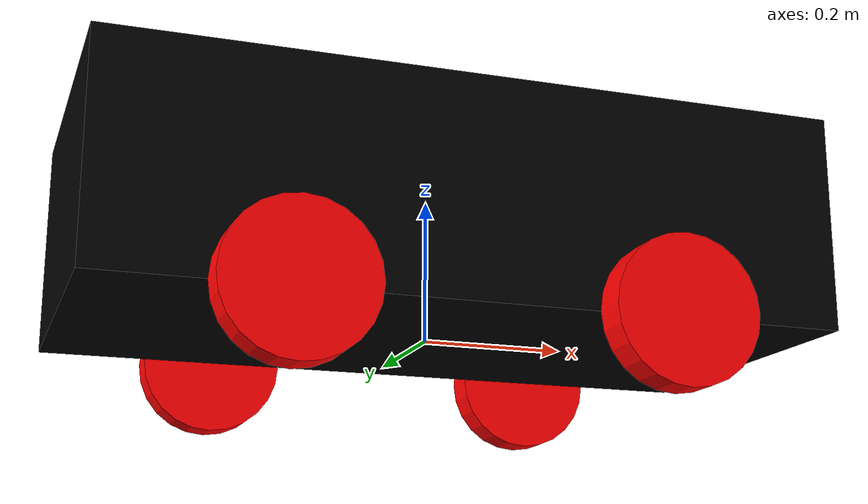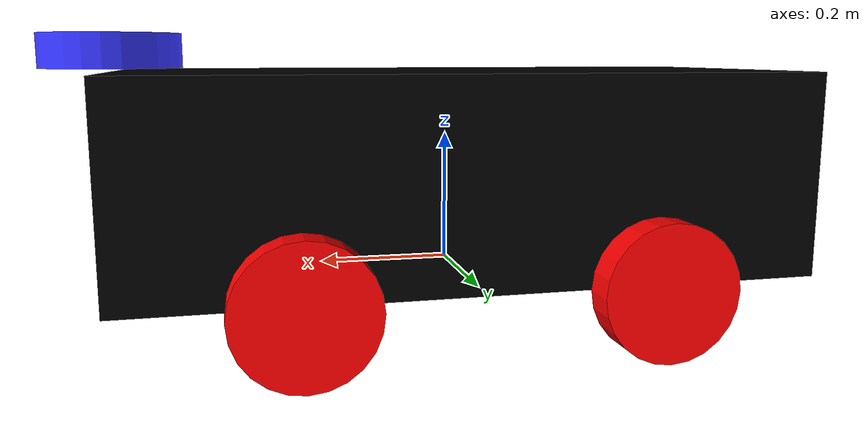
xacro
<?xml version="1.0"?>
<robot xmlns:xacro="http://www.ros.org/wiki/xacro"  name="robot">
    <!-- Robot description -->
    <xacro:include filename="robot_core.xacro"/>

    <xacro:include filename="gazebo_control.xacro"/>

    <xacro:include filename="lidar.xacro"/>

    <xacro:include filename="camera.xacro"/>

</robot>

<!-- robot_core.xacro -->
<robot xmlns:xacro="http://www.ros.org/wiki/xacro"  name="robot">

    <xacro:include filename="inertial_macros.xacro"/>

    <!-- define colors that i will use in all xacro files-->
    <material name="white">
        <color rgba="1 1 1 1" />
    </material>

    <material name="orange">
        <color rgba="1 0.3 0.1 1" />
    </material>

    <material name="blue">
        <color rgba="0.2 0.2 1 1"/>
    </material>

    <material name="black">
        <color rgba="0 0 0 1" />
    </material>

    <material name="red">
        <color rgba="1 0 0 1"/>
    </material>

    <!-- start to make links-->
    <!-- base_link-->
    <link name="base_link">

    </link>

    <!-- Base_Footprint link-->

    <joint name="base_footprint_joint" type="fixed">
        <parent link="base_link"/>
        <child link="base_footprint"/>
        <origin xyz="0 0 0" rpy="0 0 0"/>
    </joint>

    <link name="base_footprint">
    </link>

    <!-- chassis_link-->
    <!-- i need the chassis_joint on the back of robot-->
    <joint name="chassis_joint" type="fixed">
        <parent link="base_link"/>
        <child link="chassis_link"/>
        <origin xyz="-0.5 0 0"/>
    </joint>

    <link name="chassis_link">
        <visual>
            <!-- we need the origin of chassis at the back of robot so shift the visual of chassis by half in x and z-->
            <origin xyz="0.5 0 0.15"/>
            <geometry>
                <!-- diemensions of our robot x y z-->
                <box size="1 0.5 0.3"/>
            </geometry>
            <material name="black"/>
        </visual>
        <!-- collsion contain same parameters in visual but without material -->
        <collision>
            <!-- we need the origin of chassis at the back of robot so shift the visual of chassis by half in x and z-->
            <origin xyz="0.5 0 0.15"/>
            <geometry>
                <!-- diemensions of our robot x y z-->
                <box size="1 0.5 0.3"/>
            </geometry>
        </collision>
        <xacro:inertial_box mass="0.5" x="1" y="0.5" z="0.3">
            <!-- origin must be the same origin in the visual not in the joint -->
            <origin xyz="0.5 0 0.15" rpy="0 0 0"/>
        </xacro:inertial_box>
    </link>

    <!-- gazebo tag here to define colors of the material on gazebo and not appear all
         material as a white color -->
    <gazebo reference="chassis_link">
        <material>Gazebo/Black</material>
    </gazebo>

    <!-- Wheels -->

    <!-- so when adjust to our robot i need to know
    -    centre of rotation to adjust the structure to it
    -    position of our wheels from base_link-->
    <!-- Left rear wheel link -->
    <joint name="left_rear_wheel_joint" type="continuous">
        <parent link="base_link"/>
        <child link="left_rear_wheel_link"/>
        <!-- we need z point to out of the robot so rotate in x -pi/2-->
        <origin xyz="-0.25 0.275 0" rpy="-${pi/2} 0 0"/>
        <!-- we need to specify axis of rotation, we want that to be positive around z-axis
             so anti-clockwise around z-->
        <axis xyz="0 0 1"/>
    </joint>

    <link name="left_rear_wheel_link">
        <visual>
            <geometry>
                <cylinder radius="0.1" length="0.05"/>
            </geometry>
            <material name="red"/>
        </visual>
        <collision>
            <geometry>
                <cylinder radius="0.1" length="0.05"/>
            </geometry>
        </collision>
        <xacro:inertial_cylinder mass="0.1" length="0.05" radius="0.1">
            <!-- if there no origin in the visual put it all zeros-->
            <origin xyz="0 0 0" rpy="0 0 0"/>
        </xacro:inertial_cylinder>
    </link>

    <!-- gazebo tag here to define colors of the material on gazebo and not appear all
     material as a white color -->
     <gazebo reference="left_rear_wheel_link">
        <material>Gazebo/Red</material>
    </gazebo>

    <!-- Left front wheel link -->
    <joint name="left_front_wheel_joint" type="continuous">
        <parent link="base_link"/>
        <child link="left_front_wheel_link"/>
        <!-- we need z point to out of the robot so rotate in x -pi/2-->
        <origin xyz="0.25 0.275 0" rpy="-${pi/2} 0 0"/>
        <!-- we need to specify axis of rotation, we want that to be positive around z-axis
             so anti-clockwise around z-->
        <axis xyz="0 0 1"/>
    </joint>

    <link name="left_front_wheel_link">
        <visual>
            <geometry>
                <cylinder radius="0.1" length="0.05"/>
            </geometry>
            <material name="red"/>
        </visual>
        <collision>
            <geometry>
                <cylinder radius="0.1" length="0.05"/>
            </geometry>
        </collision>
        <xacro:inertial_cylinder mass="0.1" length="0.05" radius="0.1">
            <!-- if there no origin in the visual put it all zeros-->
            <origin xyz="0 0 0" rpy="0 0 0"/>
        </xacro:inertial_cylinder>
    </link>

    <!-- gazebo tag here to define colors of the material on gazebo and not appear all
     material as a white color -->
     <gazebo reference="left_front_wheel_link">
        <material>Gazebo/Red</material>
    </gazebo>

    <!-- Right rear wheel link -->
    <joint name="right_rear_wheel_joint" type="continuous">
        <parent link="base_link"/>
        <child link="right_rear_wheel_link"/>
        <!-- we need z point to out of the robot so rotate in x pi/2-->
        <origin xyz="-0.25 -0.275 0" rpy="${pi/2} 0 0"/>
        <!-- we need to specify axis of rotation, we want that to be positive around z-axis
             so clockwise around z-->
        <axis xyz="0 0 -1"/>
    </joint>

    <link name="right_rear_wheel_link">
        <visual>
            <geometry>
                <cylinder radius="0.1" length="0.05"/>
            </geometry>
            <material name="red"/>
        </visual>
        <collision>
            <geometry>
                <cylinder radius="0.1" length="0.05"/>
            </geometry>
        </collision>
        <xacro:inertial_cylinder mass="0.1" length="0.05" radius="0.1">
            <!-- if there no origin in the visual put it all zeros-->
            <origin xyz="0 0 0" rpy="0 0 0"/>
        </xacro:inertial_cylinder>
    </link>

    <!-- gazebo tag here to define colors of the material on gazebo and not appear all
     material as a white color -->
     <gazebo reference="right_rear_wheel_link">
        <material>Gazebo/Red</material>
    </gazebo>

    <!-- Right front wheel link -->
    <joint name="right_front_wheel_joint" type="continuous">
        <parent link="base_link"/>
        <child link="right_front_wheel_link"/>
        <!-- we need z point to out of the robot so rotate in x pi/2-->
        <origin xyz="0.25 -0.275 0" rpy="${pi/2} 0 0"/>
        <!-- we need to specify axis of rotation, we want that to be positive around z-axis
             so clockwise around z-->
        <axis xyz="0 0 -1"/>
    </joint>

    <link name="right_front_wheel_link">
        <visual>
            <geometry>
                <cylinder radius="0.1" length="0.05"/>
            </geometry>
            <material name="red"/>
        </visual>
        <collision>
            <geometry>
                <cylinder radius="0.1" length="0.05"/>
            </geometry>
        </collision>
        <xacro:inertial_cylinder mass="0.1" length="0.05" radius="0.1">
            <!-- if there no origin in the visual put it all zeros-->
            <origin xyz="0 0 0" rpy="0 0 0"/>
        </xacro:inertial_cylinder>
    </link>

    <!-- gazebo tag here to define colors of the material on gazebo and not appear all
     material as a white color -->
     <gazebo reference="right_front_wheel_link">
        <material>Gazebo/Red</material>
    </gazebo>

</robot>

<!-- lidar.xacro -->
<robot xmlns:xacro="http://www.ros.org/wiki/xacro" >

    <joint name="laser_joint" type="fixed">
        <parent link="chassis_link"/>
        <child link="laser_frame"/>
        <origin xyz="1 0 0.33" rpy="0 0 0"/>
    </joint>

    <link name="laser_frame">
        <visual>
            <geometry>
                <cylinder radius="0.1" length="0.05"/>
            </geometry>
            <material name="blue"/>
        </visual>
        <collision>
            <geometry>
                <cylinder radius="0.1" length="0.05"/>
            </geometry>
        </collision>
        <xacro:inertial_cylinder mass="0.1" length="0.05" radius="0.1">
            <!-- if there no origin in the visual put it all zeros-->
            <origin xyz="0 0 0" rpy="0 0 0"/>
        </xacro:inertial_cylinder>
    </link>

    <gazebo reference="laser_frame">
        <material>Gazebo/Blue</material>
        <sensor name="laser" type="ray">
            <pose> 0 0 0 0 0 0 </pose>
            <visualize>true</visualize>
            <update_rate>10</update_rate>
            <ray>
                <scan>
                    <horizontal>
                        <samples>360</samples>
                        <resolution>1</resolution>
                        <min_angle>-3.14</min_angle>
                        <max_angle>3.14</max_angle>
                    </horizontal>
                </scan>
                <range>
                    <min>0.3</min>
                    <max>12</max>
                    <resolution>0.01</resolution>
                </range>
            </ray>
            <plugin name="laser_controller" filename="libgazebo_ros_ray_sensor.so">
                <ros>
                    <argument>~/out:=scan</argument>
                </ros>
                <output_type>sensor_msgs/LaserScan</output_type>
                <frame_name>laser_frame</frame_name>
            </plugin>
        </sensor>
    </gazebo>

</robot>

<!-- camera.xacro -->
<robot xmlns:xacro="http://www.ros.org/wiki/xacro" >

    <joint name="camera_joint" type="fixed">
        <parent link="chassis_link"/>
        <child link="camera_link"/>
        <origin xyz="1 0 0.17" rpy="0 0 0"/>
    </joint>

    <link name="camera_link">
        <visual>
            <geometry>
                <box size="0.010 0.03 0.03"/>
            </geometry>
            <material name="blue"/>
        </visual>
    </link>

    <!-- convert from ROS coordinate system to Standard coordinate system-->
    <joint name="camera_optica;_joint" type="fixed">
        <parent link="camera_link"/>
        <child link="camera_link_optical"/>
        <origin xyz="0 0 0" rpy="${-pi/2} 0 ${pi/2}"/>
    </joint>

    <link name="camera_link_optical"></link>

    <gazebo reference="camera_link">
        <material>Gazebo/Blue</material>
        <sensor name="camera" type="camera">
            <pose> 0 0 0 0 0 0 </pose>
            <visualize>true</visualize>
            <update_rate>10</update_rate>
            <camera>
                <horizontal_fov>1.089</horizontal_fov>
                <image>
                    <format>R8G8B8</format>
                    <width>640</width>
                    <height>480</height>
                </image>
                <clip>
                    <near>0.05</near>
                    <far>8.0</far>
                </clip>
            </camera>
            <plugin name="camera_controller" filename="libgazebo_ros_camera.so">
                <frame_name>camera_link_optical</frame_name>
            </plugin>
        </sensor>
    </gazebo>

</robot>
